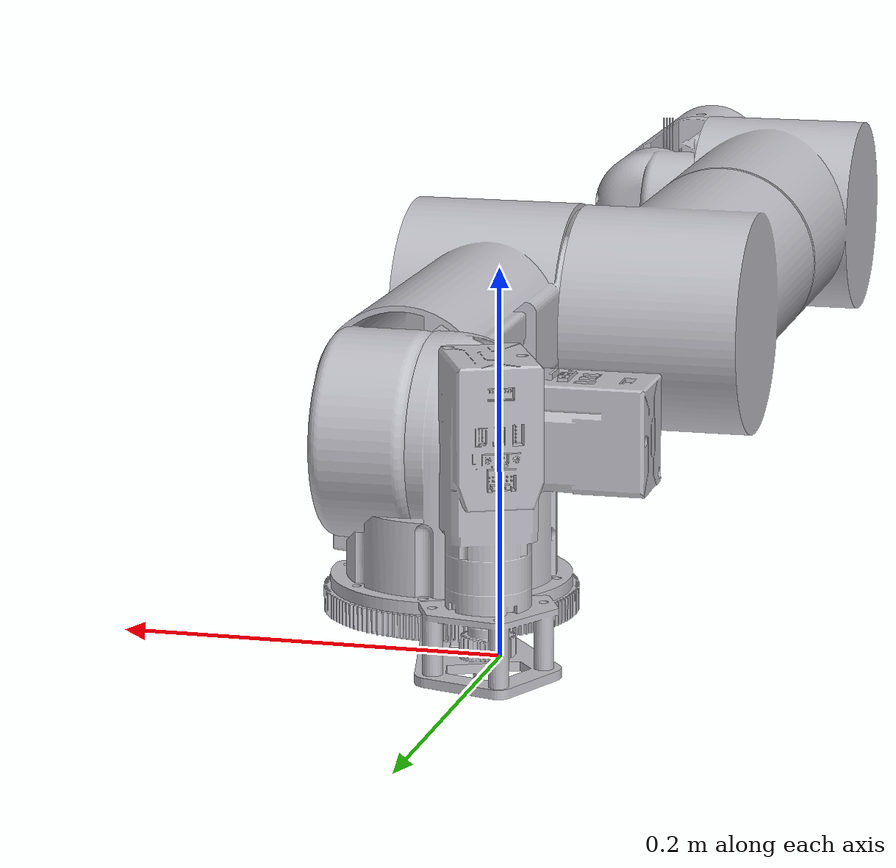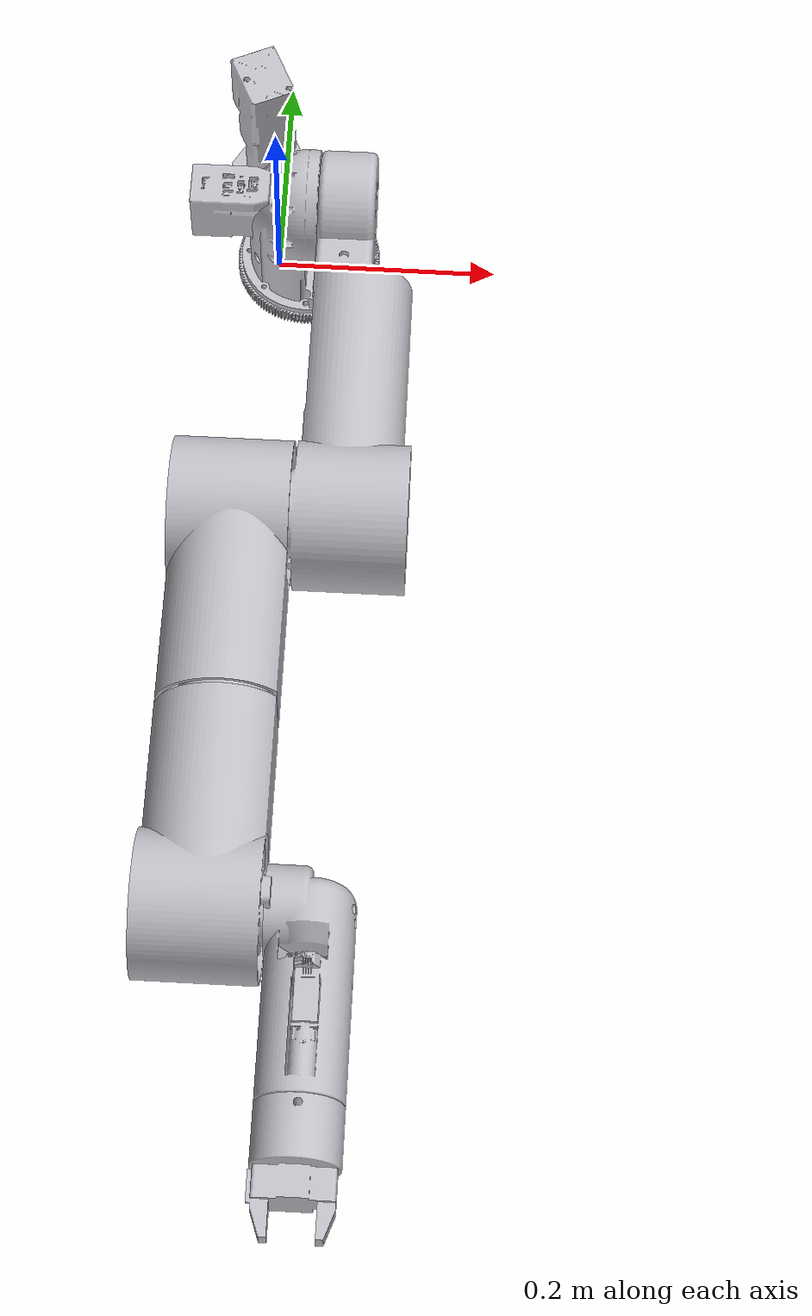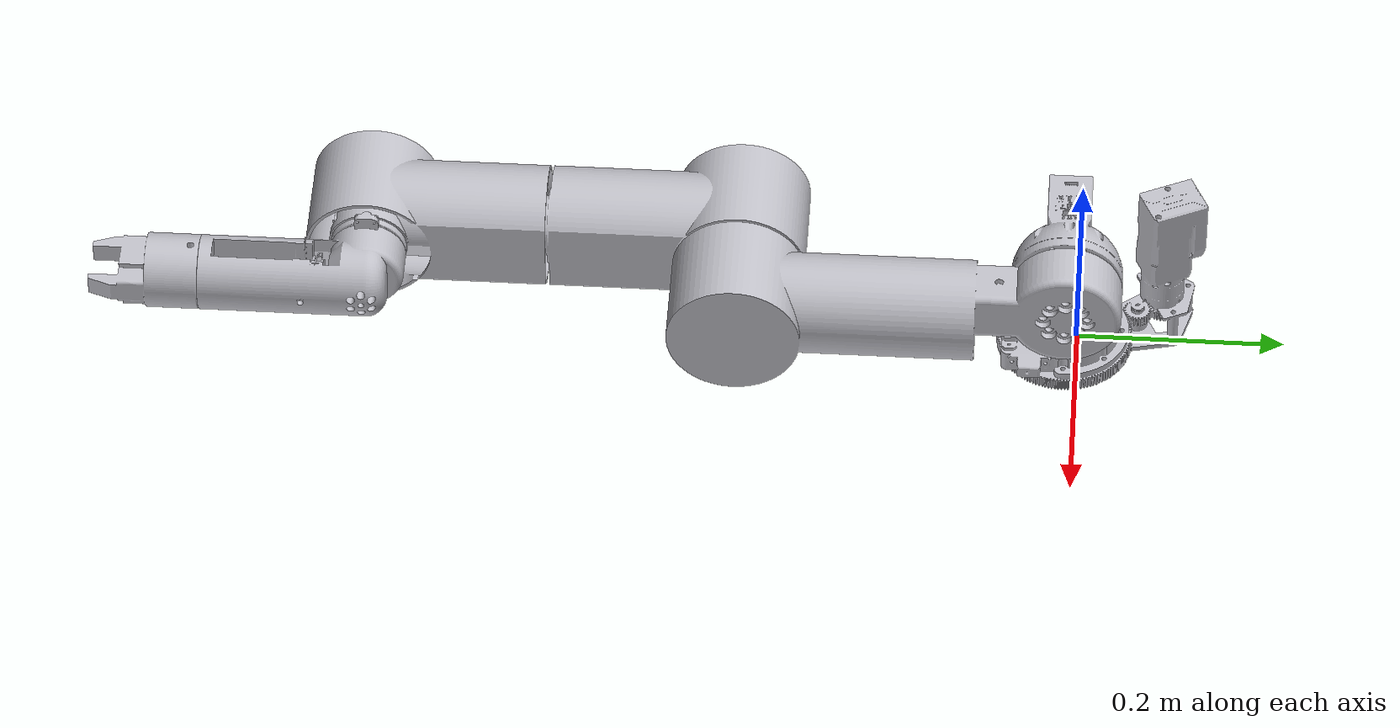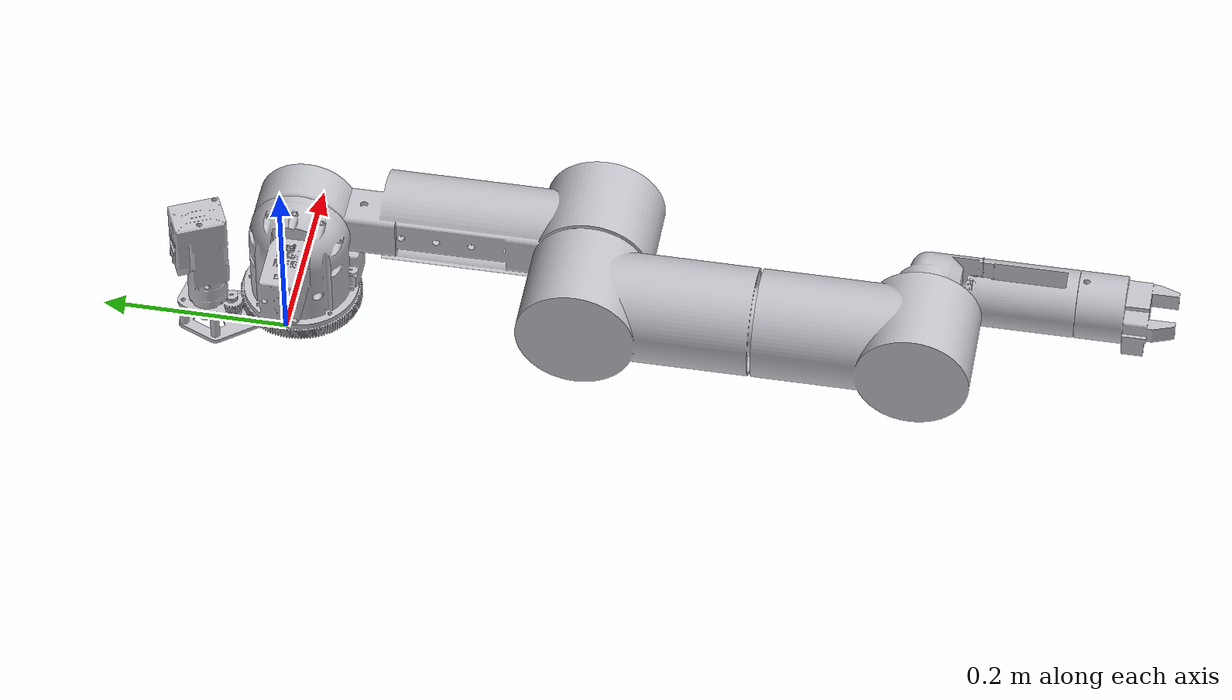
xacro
<?xml version="1.0"?>
<robot xmlns:xacro="http://www.ros.org/wiki/xacro" name="spotarm_assembly">
    <xacro:arg name="initial_positions_file" default="initial_positions.yaml" />

    <!-- Import spotarm_assembly urdf file -->
    <xacro:include filename="$(find spotarm_assembly_description)/urdf/spotarm_assembly.xacro" />

    <!-- Import control_xacro -->

</robot>

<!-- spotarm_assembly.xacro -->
<robot name="spotarm_assembly" xmlns:xacro="http://www.ros.org/wiki/xacro">

<xacro:include filename="$(find spotarm_assembly_description)/urdf/materials.xacro" />
<xacro:include filename="$(find spotarm_assembly_description)/urdf/spotarm_assembly.trans" />
<xacro:include filename="$(find spotarm_assembly_description)/urdf/spotarm_assembly.gazebo" />
<xacro:include filename="spotarm_assembly.ros2_control.xacro"/>
<link name="base_link">
  <inertial>
    <origin xyz="-0.0010206433535600843 0.05102477807067246 0.07813725800807331" rpy="0 0 0"/>
    <mass value="3.2658781369547176"/>
    <inertia ixx="0.017479" iyy="0.012386" izz="0.01115" ixy="0.003033" iyz="-0.005858" ixz="0.002731"/>
  </inertial>
  <visual>
    <origin xyz="0 0 0" rpy="0 0 0"/>
    <geometry>
      <mesh filename="file://$(find spotarm_assembly_description)/meshes/base_link.stl" scale="0.001 0.001 0.001"/>
    </geometry>
    <material name="silver"/>
  </visual>
  <collision>
    <origin xyz="0 0 0" rpy="0 0 0"/>
    <geometry>
      <mesh filename="file://$(find spotarm_assembly_description)/meshes/base_link.stl" scale="0.001 0.001 0.001"/>
    </geometry>
  </collision>
</link>

<link name="link_2_1">
  <inertial>
    <origin xyz="-0.012527874109626764 -0.0005474727478518779 0.05618235883344737" rpy="0 0 0"/>
    <mass value="7.133736370057803"/>
    <inertia ixx="0.013679" iyy="0.018159" izz="0.014137" ixy="0.000278" iyz="-0.000219" ixz="0.002124"/>
  </inertial>
  <visual>
    <origin xyz="-0.02835 0.011972 -0.033179" rpy="0 0 0"/>
    <geometry>
      <mesh filename="file://$(find spotarm_assembly_description)/meshes/link_2_1.stl" scale="0.001 0.001 0.001"/>
    </geometry>
    <material name="silver"/>
  </visual>
  <collision>
    <origin xyz="-0.02835 0.011972 -0.033179" rpy="0 0 0"/>
    <geometry>
      <mesh filename="file://$(find spotarm_assembly_description)/meshes/link_2_1.stl" scale="0.001 0.001 0.001"/>
    </geometry>
  </collision>
</link>

<link name="link_3_1">
  <inertial>
    <origin xyz="-0.0023570645830831988 -0.2070530002719938 0.00014934365865988675" rpy="0 0 0"/>
    <mass value="9.269532978574247"/>
    <inertia ixx="0.160341" iyy="0.013913" izz="0.160804" ixy="-1.4e-05" iyz="1.2e-05" ixz="-0.00018"/>
  </inertial>
  <visual>
    <origin xyz="-0.074358 0.011972 -0.109385" rpy="0 0 0"/>
    <geometry>
      <mesh filename="file://$(find spotarm_assembly_description)/meshes/link_3_1.stl" scale="0.001 0.001 0.001"/>
    </geometry>
    <material name="silver"/>
  </visual>
  <collision>
    <origin xyz="-0.074358 0.011972 -0.109385" rpy="0 0 0"/>
    <geometry>
      <mesh filename="file://$(find spotarm_assembly_description)/meshes/link_3_1.stl" scale="0.001 0.001 0.001"/>
    </geometry>
  </collision>
</link>

<link name="link_4_1">
  <inertial>
    <origin xyz="-0.014428046075399614 -0.08611675195042084 -0.0016741934805408476" rpy="0 0 0"/>
    <mass value="7.656189719749854"/>
    <inertia ixx="0.044687" iyy="0.011252" izz="0.043172" ixy="0.000767" iyz="-0.000125" ixz="1.1e-05"/>
  </inertial>
  <visual>
    <origin xyz="-0.001798 0.325662 -0.109385" rpy="0 0 0"/>
    <geometry>
      <mesh filename="file://$(find spotarm_assembly_description)/meshes/link_4_1.stl" scale="0.001 0.001 0.001"/>
    </geometry>
    <material name="silver"/>
  </visual>
  <collision>
    <origin xyz="-0.001798 0.325662 -0.109385" rpy="0 0 0"/>
    <geometry>
      <mesh filename="file://$(find spotarm_assembly_description)/meshes/link_4_1.stl" scale="0.001 0.001 0.001"/>
    </geometry>
  </collision>
</link>

<link name="link_5_1">
  <inertial>
    <origin xyz="-8.830559206677441e-05 -0.10284977811786078 -0.00047877688390274287" rpy="0 0 0"/>
    <mass value="6.8508373998013345"/>
    <inertia ixx="0.031632" iyy="0.012107" izz="0.032684" ixy="0.000268" iyz="-7.5e-05" ixz="3.9e-05"/>
  </inertial>
  <visual>
    <origin xyz="0.010663 0.537462 -0.109385" rpy="0 0 0"/>
    <geometry>
      <mesh filename="file://$(find spotarm_assembly_description)/meshes/link_5_1.stl" scale="0.001 0.001 0.001"/>
    </geometry>
    <material name="silver"/>
  </visual>
  <collision>
    <origin xyz="0.010663 0.537462 -0.109385" rpy="0 0 0"/>
    <geometry>
      <mesh filename="file://$(find spotarm_assembly_description)/meshes/link_5_1.stl" scale="0.001 0.001 0.001"/>
    </geometry>
  </collision>
</link>

<link name="link_6_1">
  <inertial>
    <origin xyz="0.012673058332606776 -0.0664264989047959 -0.014305380960634592" rpy="0 0 0"/>
    <mass value="4.625546361310207"/>
    <inertia ixx="0.014614" iyy="0.003535" izz="0.014333" ixy="0.000114" iyz="-0.00222" ixz="3.5e-05"/>
  </inertial>
  <visual>
    <origin xyz="-0.059837 0.681395 -0.109385" rpy="0 0 0"/>
    <geometry>
      <mesh filename="file://$(find spotarm_assembly_description)/meshes/link_6_1.stl" scale="0.001 0.001 0.001"/>
    </geometry>
    <material name="silver"/>
  </visual>
  <collision>
    <origin xyz="-0.059837 0.681395 -0.109385" rpy="0 0 0"/>
    <geometry>
      <mesh filename="file://$(find spotarm_assembly_description)/meshes/link_6_1.stl" scale="0.001 0.001 0.001"/>
    </geometry>
  </collision>
</link>

<link name="gripper_1">
  <inertial>
    <origin xyz="-0.0007404974490983068 -0.036613651652765644 -0.008144219074578796" rpy="0 0 0"/>
    <mass value="2.203716226137548"/>
    <inertia ixx="0.001814" iyy="0.001382" izz="0.001879" ixy="-3.5e-05" iyz="-0.000177" ixz="-3.9e-05"/>
  </inertial>
  <visual>
    <origin xyz="-0.072537 0.836158 -0.082096" rpy="0 0 0"/>
    <geometry>
      <mesh filename="file://$(find spotarm_assembly_description)/meshes/gripper_1.stl" scale="0.001 0.001 0.001"/>
    </geometry>
    <material name="silver"/>
  </visual>
  <collision>
    <origin xyz="-0.072537 0.836158 -0.082096" rpy="0 0 0"/>
    <geometry>
      <mesh filename="file://$(find spotarm_assembly_description)/meshes/gripper_1.stl" scale="0.001 0.001 0.001"/>
    </geometry>
  </collision>
</link>

<joint name="Revolute1" type="revolute">
  <origin xyz="0.02835 -0.011972 0.033179" rpy="0 0 0"/>
  <parent link="base_link"/>
  <child link="link_2_1"/>
  <axis xyz="-0.0 0.0 1.0"/>
  <limit lower="-0.436" upper="2.13" effort="30.0" velocity="1.0"/>
</joint>

<joint name="Revolute2" type="continuous">
  <origin xyz="0.046008 0.0 0.076206" rpy="0 0 0"/>
  <parent link="link_2_1"/>
  <child link="link_3_1"/>
  <axis xyz="1.0 -0.0 -0.0"/>
</joint>

<joint name="Revolute3" type="continuous">
  <origin xyz="-0.07256 -0.31369 0.0" rpy="0 0 0"/>
  <parent link="link_3_1"/>
  <child link="link_4_1"/>
  <axis xyz="-1.0 0.0 0.0"/>
</joint>

<joint name="Revolute4" type="continuous">
  <origin xyz="-0.012461 -0.2118 0.0" rpy="0 0 0"/>
  <parent link="link_4_1"/>
  <child link="link_5_1"/>
  <axis xyz="-0.0 -1.0 0.0"/>
</joint>

<joint name="Revolute5" type="continuous">
  <origin xyz="0.0705 -0.143933 0.0" rpy="-0.175 0 0"/>
  <parent link="link_5_1"/>
  <child link="link_6_1"/>
  <axis xyz="1.0 -0.0 -0.0"/>
</joint>

<joint name="Revolute6" type="continuous">
  <origin xyz="0.0127 -0.154763 -0.027289" rpy="0 0 0"/>
  <parent link="link_6_1"/>
  <child link="gripper_1"/>
  <axis xyz="0.0 0.984808 0.173648"/>
</joint>

</robot>

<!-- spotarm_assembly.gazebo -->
<robot name="spotarm_assembly" xmlns:xacro="http://www.ros.org/wiki/xacro" >

<xacro:property name="body_color" value="Gazebo/Silver" />

<gazebo>
  <plugin name="control" filename="libgazebo_ros_control.so"/>
</gazebo>
<gazebo reference="base_link">
  <material>${body_color}</material>
  <mu1>0.2</mu1>
  <mu2>0.2</mu2>
  <self_collide>true</self_collide>
  <gravity>true</gravity>
</gazebo>

<gazebo reference="link_2_1">
  <material>${body_color}</material>
  <mu1>0.2</mu1>
  <mu2>0.2</mu2>
  <self_collide>true</self_collide>
</gazebo>

<gazebo reference="link_3_1">
  <material>${body_color}</material>
  <mu1>0.2</mu1>
  <mu2>0.2</mu2>
  <self_collide>true</self_collide>
</gazebo>

<gazebo reference="link_4_1">
  <material>${body_color}</material>
  <mu1>0.2</mu1>
  <mu2>0.2</mu2>
  <self_collide>true</self_collide>
</gazebo>

<gazebo reference="link_5_1">
  <material>${body_color}</material>
  <mu1>0.2</mu1>
  <mu2>0.2</mu2>
  <self_collide>true</self_collide>
</gazebo>

<gazebo reference="link_6_1">
  <material>${body_color}</material>
  <mu1>0.2</mu1>
  <mu2>0.2</mu2>
  <self_collide>true</self_collide>
</gazebo>

<gazebo reference="gripper_1">
  <material>${body_color}</material>
  <mu1>0.2</mu1>
  <mu2>0.2</mu2>
  <self_collide>true</self_collide>
</gazebo>

</robot>
